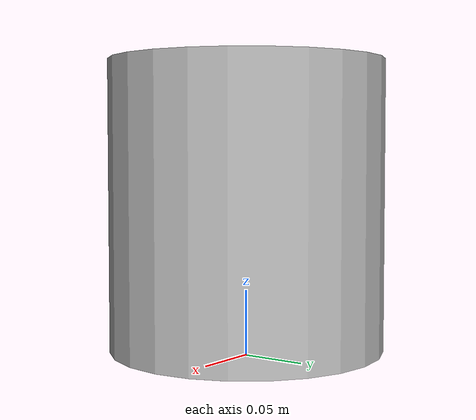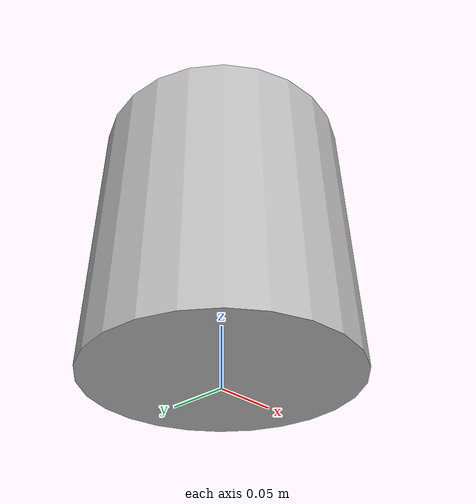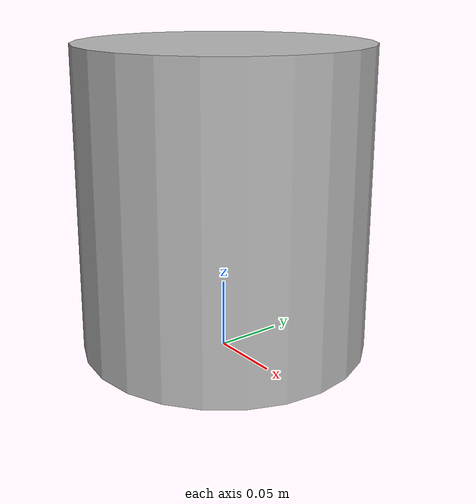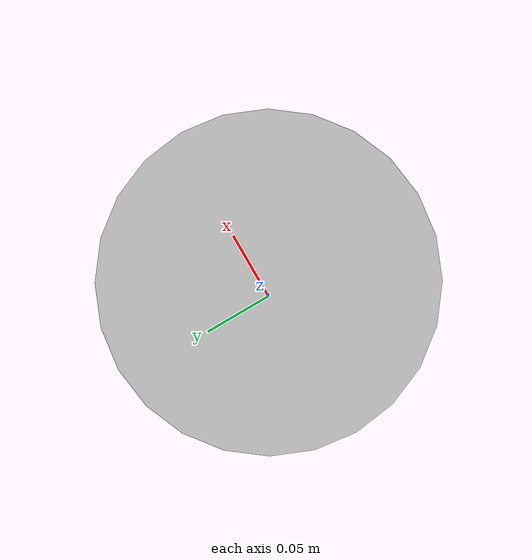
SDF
<?xml version="1.0" ?>
<sdf version="1.5">
  <model name="beer">
    <link name="link">
      <pose>0 0 0.115 0 0 0</pose>
      <inertial>
        <mass>0.120</mass>
        <inertia>
          <ixx>0.001145</ixx>
          <ixy>0</ixy>
          <ixz>0</ixz>
          <iyy>0.001145</iyy>
          <iyz>0</iyz>
          <izz>0.000919</izz>
        </inertia>
      </inertial>
      <collision name="collision">
        <geometry>
          <cylinder>
            <radius>0.104000</radius>
            <length>0.220000</length>
          </cylinder>
        </geometry>
      </collision>
      <visual name="visual">
        <geometry>
          <cylinder>
            <radius>0.104000</radius>
            <length>0.220000</length>
          </cylinder>
        </geometry>
        <material>
          <script>
            <uri>model://beer/materials/scripts</uri>
            <uri>model://beer/materials/textures</uri>
            <name>Beer/Diffuse</name>
          </script>
        </material>
      </visual>
    </link>
  </model>
</sdf>
